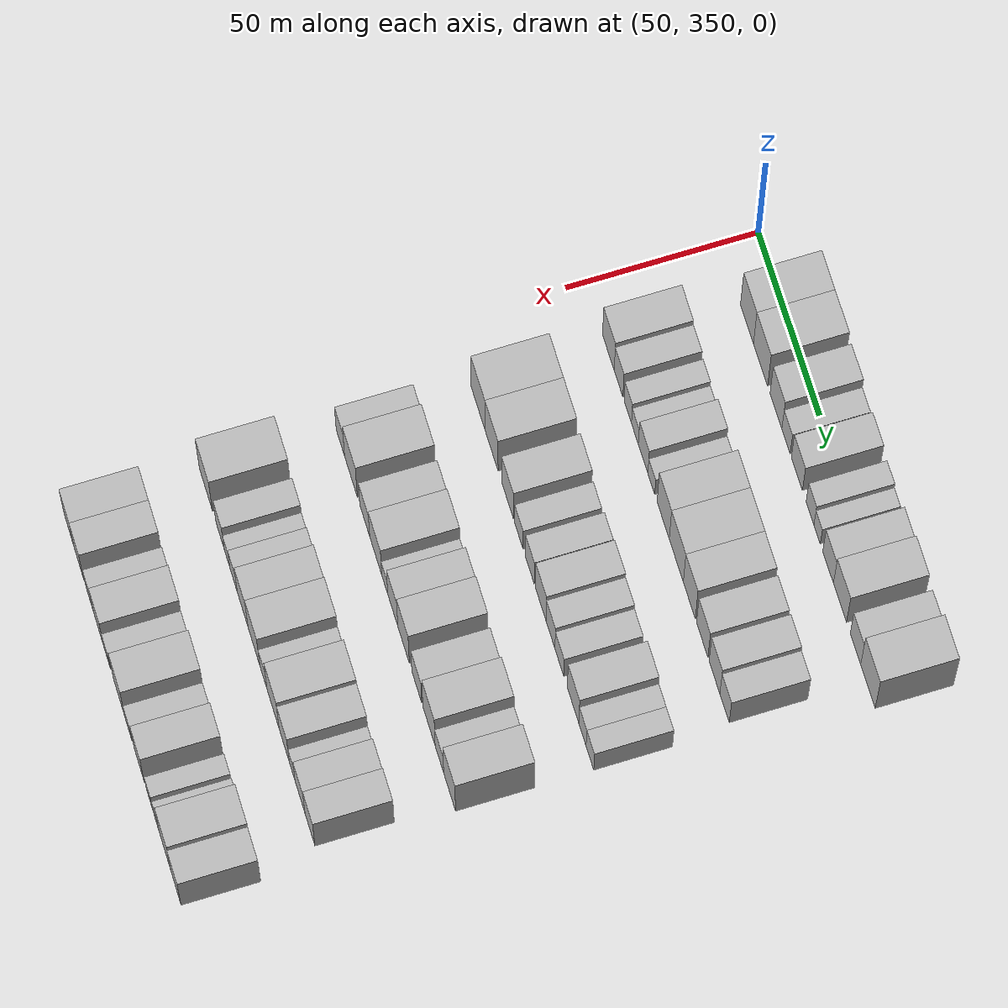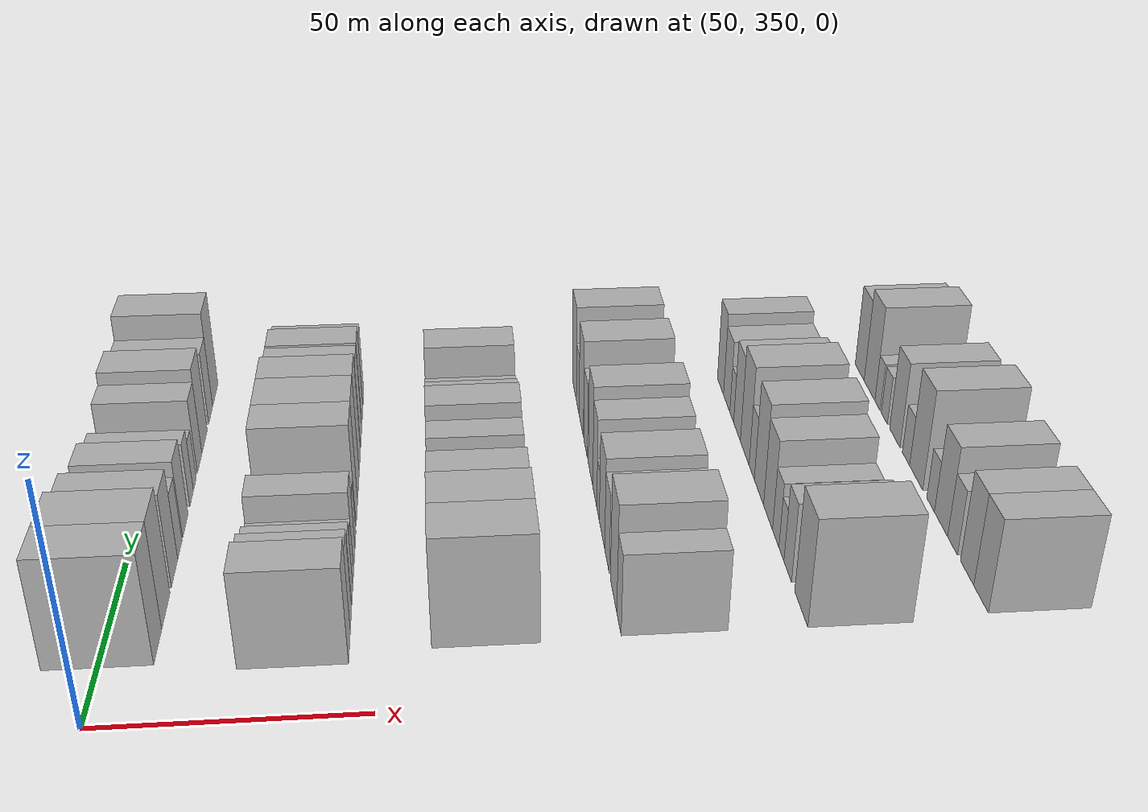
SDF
<sdf version="1.6">
 <world name="default">
  <model name="building_105">
   <static>1</static>
   <pose>50.0000 372.1015 0 0.000000 0.000000 0.000000</pose>
   <link name="link">
    <pose>0 0 12.00 0 0 0</pose>
    <collision name="collision"><geometry><box><size>20.0000 10.6088 24.0000</size></box></geometry></collision>
    <visual name="visual">
     <cast_shadows>0</cast_shadows>
     <geometry><box><size>20.0000 10.6088 24.0000</size></box></geometry>
     <material>
      <script>
       <uri>model://HANNAS_wall/materials/scripts</uri>
       <uri>model://HANNAS_wall/materials/textures</uri>
       <name>vrc/HANNAS_wall</name>
      </script>
     </material>
    </visual>
   </link>
  </model>
  <model name="building_106">
   <static>1</static>
   <pose>50.0000 383.1691 0 0.000000 0.000000 0.000000</pose>
   <link name="link">
    <pose>0 0 12.00 0 0 0</pose>
    <collision name="collision"><geometry><box><size>20.0000 11.5266 24.0000</size></box></geometry></collision>
    <visual name="visual">
     <cast_shadows>0</cast_shadows>
     <geometry><box><size>20.0000 11.5266 24.0000</size></box></geometry>
     <material>
      <script>
       <uri>model://HANNAS_wall/materials/scripts</uri>
       <uri>model://HANNAS_wall/materials/textures</uri>
       <name>vrc/HANNAS_wall</name>
      </script>
     </material>
    </visual>
   </link>
  </model>
  <model name="building_107">
   <static>1</static>
   <pose>50.0000 395.7316 0 0.000000 0.000000 0.000000</pose>
   <link name="link">
    <pose>0 0 10.50 0 0 0</pose>
    <collision name="collision"><geometry><box><size>20.0000 9.5983 21.0000</size></box></geometry></collision>
    <visual name="visual">
     <cast_shadows>0</cast_shadows>
     <geometry><box><size>20.0000 9.5983 21.0000</size></box></geometry>
     <material>
      <script>
       <uri>model://HANNAS_wall/materials/scripts</uri>
       <uri>model://HANNAS_wall/materials/textures</uri>
       <name>vrc/HANNAS_wall</name>
      </script>
     </material>
    </visual>
   </link>
  </model>
  <model name="building_108">
   <static>1</static>
   <pose>50.0000 403.8752 0 0.000000 0.000000 0.000000</pose>
   <link name="link">
    <pose>0 0 7.50 0 0 0</pose>
    <collision name="collision"><geometry><box><size>20.0000 6.6890 15.0000</size></box></geometry></collision>
    <visual name="visual">
     <cast_shadows>0</cast_shadows>
     <geometry><box><size>20.0000 6.6890 15.0000</size></box></geometry>
     <material>
      <script>
       <uri>model://HANNAS_wall/materials/scripts</uri>
       <uri>model://HANNAS_wall/materials/textures</uri>
       <name>vrc/HANNAS_wall</name>
      </script>
     </material>
    </visual>
   </link>
  </model>
  <model name="building_109">
   <static>1</static>
   <pose>50.0000 412.6821 0 0.000000 0.000000 0.000000</pose>
   <link name="link">
    <pose>0 0 9.00 0 0 0</pose>
    <collision name="collision"><geometry><box><size>20.0000 8.9248 18.0000</size></box></geometry></collision>
    <visual name="visual">
     <cast_shadows>0</cast_shadows>
     <geometry><box><size>20.0000 8.9248 18.0000</size></box></geometry>
     <material>
      <script>
       <uri>model://HANNAS_wall/materials/scripts</uri>
       <uri>model://HANNAS_wall/materials/textures</uri>
       <name>vrc/HANNAS_wall</name>
      </script>
     </material>
    </visual>
   </link>
  </model>
  <model name="building_110">
   <static>1</static>
   <pose>50.0000 423.2703 0 0.000000 0.000000 0.000000</pose>
   <link name="link">
    <pose>0 0 7.50 0 0 0</pose>
    <collision name="collision"><geometry><box><size>20.0000 6.2515 15.0000</size></box></geometry></collision>
    <visual name="visual">
     <cast_shadows>0</cast_shadows>
     <geometry><box><size>20.0000 6.2515 15.0000</size></box></geometry>
     <material>
      <script>
       <uri>model://HANNAS_wall/materials/scripts</uri>
       <uri>model://HANNAS_wall/materials/textures</uri>
       <name>vrc/HANNAS_wall</name>
      </script>
     </material>
    </visual>
   </link>
  </model>
  <model name="building_111">
   <static>1</static>
   <pose>50.0000 428.9384 0 0.000000 0.000000 0.000000</pose>
   <link name="link">
    <pose>0 0 6.00 0 0 0</pose>
    <collision name="collision"><geometry><box><size>20.0000 5.0847 12.0000</size></box></geometry></collision>
    <visual name="visual">
     <cast_shadows>0</cast_shadows>
     <geometry><box><size>20.0000 5.0847 12.0000</size></box></geometry>
     <material>
      <script>
       <uri>model://HANNAS_wall/materials/scripts</uri>
       <uri>model://HANNAS_wall/materials/textures</uri>
       <name>vrc/HANNAS_wall</name>
      </script>
     </material>
    </visual>
   </link>
  </model>
  <model name="building_112">
   <static>1</static>
   <pose>50.0000 437.7396 0 0.000000 0.000000 0.000000</pose>
   <link name="link">
    <pose>0 0 9.00 0 0 0</pose>
    <collision name="collision"><geometry><box><size>20.0000 8.5177 18.0000</size></box></geometry></collision>
    <visual name="visual">
     <cast_shadows>0</cast_shadows>
     <geometry><box><size>20.0000 8.5177 18.0000</size></box></geometry>
     <material>
      <script>
       <uri>model://HANNAS_wall/materials/scripts</uri>
       <uri>model://HANNAS_wall/materials/textures</uri>
       <name>vrc/HANNAS_wall</name>
      </script>
     </material>
    </visual>
   </link>
  </model>
  <model name="building_113">
   <static>1</static>
   <pose>50.0000 447.1914 0 0.000000 0.000000 0.000000</pose>
   <link name="link">
    <pose>0 0 10.50 0 0 0</pose>
    <collision name="collision"><geometry><box><size>20.0000 10.3860 21.0000</size></box></geometry></collision>
    <visual name="visual">
     <cast_shadows>0</cast_shadows>
     <geometry><box><size>20.0000 10.3860 21.0000</size></box></geometry>
     <material>
      <script>
       <uri>model://HANNAS_wall/materials/scripts</uri>
       <uri>model://HANNAS_wall/materials/textures</uri>
       <name>vrc/HANNAS_wall</name>
      </script>
     </material>
    </visual>
   </link>
  </model>
  <model name="building_114">
   <static>1</static>
   <pose>50.0000 459.5159 0 0.000000 0.000000 0.000000</pose>
   <link name="link">
    <pose>0 0 9.00 0 0 0</pose>
    <collision name="collision"><geometry><box><size>20.0000 8.2631 18.0000</size></box></geometry></collision>
    <visual name="visual">
     <cast_shadows>0</cast_shadows>
     <geometry><box><size>20.0000 8.2631 18.0000</size></box></geometry>
     <material>
      <script>
       <uri>model://HANNAS_wall/materials/scripts</uri>
       <uri>model://HANNAS_wall/materials/textures</uri>
       <name>vrc/HANNAS_wall</name>
      </script>
     </material>
    </visual>
   </link>
  </model>
  <model name="building_115">
   <static>1</static>
   <pose>50.0000 469.3848 0 0.000000 0.000000 0.000000</pose>
   <link name="link">
    <pose>0 0 12.00 0 0 0</pose>
    <collision name="collision"><geometry><box><size>20.0000 11.4747 24.0000</size></box></geometry></collision>
    <visual name="visual">
     <cast_shadows>0</cast_shadows>
     <geometry><box><size>20.0000 11.4747 24.0000</size></box></geometry>
     <material>
      <script>
       <uri>model://HANNAS_wall/materials/scripts</uri>
       <uri>model://HANNAS_wall/materials/textures</uri>
       <name>vrc/HANNAS_wall</name>
      </script>
     </material>
    </visual>
   </link>
  </model>
  <model name="building_232">
   <static>1</static>
   <pose>85.0000 369.1841 0 0.000000 0.000000 0.000000</pose>
   <link name="link">
    <pose>0 0 10.50 0 0 0</pose>
    <collision name="collision"><geometry><box><size>20.0000 9.6721 21.0000</size></box></geometry></collision>
    <visual name="visual">
     <cast_shadows>0</cast_shadows>
     <geometry><box><size>20.0000 9.6721 21.0000</size></box></geometry>
     <material>
      <script>
       <uri>model://HANNAS_wall/materials/scripts</uri>
       <uri>model://HANNAS_wall/materials/textures</uri>
       <name>vrc/HANNAS_wall</name>
      </script>
     </material>
    </visual>
   </link>
  </model>
  <model name="building_233">
   <static>1</static>
   <pose>85.0000 377.6361 0 0.000000 0.000000 0.000000</pose>
   <link name="link">
    <pose>0 0 9.00 0 0 0</pose>
    <collision name="collision"><geometry><box><size>20.0000 7.2318 18.0000</size></box></geometry></collision>
    <visual name="visual">
     <cast_shadows>0</cast_shadows>
     <geometry><box><size>20.0000 7.2318 18.0000</size></box></geometry>
     <material>
      <script>
       <uri>model://HANNAS_wall/materials/scripts</uri>
       <uri>model://HANNAS_wall/materials/textures</uri>
       <name>vrc/HANNAS_wall</name>
      </script>
     </material>
    </visual>
   </link>
  </model>
  <model name="building_234">
   <static>1</static>
   <pose>85.0000 385.3047 0 0.000000 0.000000 0.000000</pose>
   <link name="link">
    <pose>0 0 7.50 0 0 0</pose>
    <collision name="collision"><geometry><box><size>20.0000 6.1054 15.0000</size></box></geometry></collision>
    <visual name="visual">
     <cast_shadows>0</cast_shadows>
     <geometry><box><size>20.0000 6.1054 15.0000</size></box></geometry>
     <material>
      <script>
       <uri>model://HANNAS_wall/materials/scripts</uri>
       <uri>model://HANNAS_wall/materials/textures</uri>
       <name>vrc/HANNAS_wall</name>
      </script>
     </material>
    </visual>
   </link>
  </model>
  <model name="building_235">
   <static>1</static>
   <pose>85.0000 391.1885 0 0.000000 0.000000 0.000000</pose>
   <link name="link">
    <pose>0 0 6.00 0 0 0</pose>
    <collision name="collision"><geometry><box><size>20.0000 5.6624 12.0000</size></box></geometry></collision>
    <visual name="visual">
     <cast_shadows>0</cast_shadows>
     <geometry><box><size>20.0000 5.6624 12.0000</size></box></geometry>
     <material>
      <script>
       <uri>model://HANNAS_wall/materials/scripts</uri>
       <uri>model://HANNAS_wall/materials/textures</uri>
       <name>vrc/HANNAS_wall</name>
      </script>
     </material>
    </visual>
   </link>
  </model>
  <model name="building_236">
   <static>1</static>
   <pose>85.0000 397.9629 0 0.000000 0.000000 0.000000</pose>
   <link name="link">
    <pose>0 0 9.00 0 0 0</pose>
    <collision name="collision"><geometry><box><size>20.0000 7.8863 18.0000</size></box></geometry></collision>
    <visual name="visual">
     <cast_shadows>0</cast_shadows>
     <geometry><box><size>20.0000 7.8863 18.0000</size></box></geometry>
     <material>
      <script>
       <uri>model://HANNAS_wall/materials/scripts</uri>
       <uri>model://HANNAS_wall/materials/textures</uri>
       <name>vrc/HANNAS_wall</name>
      </script>
     </material>
    </visual>
   </link>
  </model>
  <model name="building_237">
   <static>1</static>
   <pose>85.0000 404.7337 0 0.000000 0.000000 0.000000</pose>
   <link name="link">
    <pose>0 0 6.00 0 0 0</pose>
    <collision name="collision"><geometry><box><size>20.0000 5.6554 12.0000</size></box></geometry></collision>
    <visual name="visual">
     <cast_shadows>0</cast_shadows>
     <geometry><box><size>20.0000 5.6554 12.0000</size></box></geometry>
     <material>
      <script>
       <uri>model://HANNAS_wall/materials/scripts</uri>
       <uri>model://HANNAS_wall/materials/textures</uri>
       <name>vrc/HANNAS_wall</name>
      </script>
     </material>
    </visual>
   </link>
  </model>
  <model name="building_238">
   <static>1</static>
   <pose>85.0000 414.5312 0 0.000000 0.000000 0.000000</pose>
   <link name="link">
    <pose>0 0 12.00 0 0 0</pose>
    <collision name="collision"><geometry><box><size>20.0000 9.9396 24.0000</size></box></geometry></collision>
    <visual name="visual">
     <cast_shadows>0</cast_shadows>
     <geometry><box><size>20.0000 9.9396 24.0000</size></box></geometry>
     <material>
      <script>
       <uri>model://HANNAS_wall/materials/scripts</uri>
       <uri>model://HANNAS_wall/materials/textures</uri>
       <name>vrc/HANNAS_wall</name>
      </script>
     </material>
    </visual>
   </link>
  </model>
  <model name="building_239">
   <static>1</static>
   <pose>85.0000 425.2509 0 0.000000 0.000000 0.000000</pose>
   <link name="link">
    <pose>0 0 12.00 0 0 0</pose>
    <collision name="collision"><geometry><box><size>20.0000 11.4998 24.0000</size></box></geometry></collision>
    <visual name="visual">
     <cast_shadows>0</cast_shadows>
     <geometry><box><size>20.0000 11.4998 24.0000</size></box></geometry>
     <material>
      <script>
       <uri>model://HANNAS_wall/materials/scripts</uri>
       <uri>model://HANNAS_wall/materials/textures</uri>
       <name>vrc/HANNAS_wall</name>
      </script>
     </material>
    </visual>
   </link>
  </model>
  <model name="building_240">
   <static>1</static>
   <pose>85.0000 435.8773 0 0.000000 0.000000 0.000000</pose>
   <link name="link">
    <pose>0 0 12.00 0 0 0</pose>
    <collision name="collision"><geometry><box><size>20.0000 9.7529 24.0000</size></box></geometry></collision>
    <visual name="visual">
     <cast_shadows>0</cast_shadows>
     <geometry><box><size>20.0000 9.7529 24.0000</size></box></geometry>
     <material>
      <script>
       <uri>model://HANNAS_wall/materials/scripts</uri>
       <uri>model://HANNAS_wall/materials/textures</uri>
       <name>vrc/HANNAS_wall</name>
      </script>
     </material>
    </visual>
   </link>
  </model>
  <model name="building_241">
   <static>1</static>
   <pose>85.0000 446.3670 0 0.000000 0.000000 0.000000</pose>
   <link name="link">
    <pose>0 0 10.50 0 0 0</pose>
    <collision name="collision"><geometry><box><size>20.0000 9.2265 21.0000</size></box></geometry></collision>
    <visual name="visual">
     <cast_shadows>0</cast_shadows>
     <geometry><box><size>20.0000 9.2265 21.0000</size></box></geometry>
     <material>
      <script>
       <uri>model://HANNAS_wall/materials/scripts</uri>
       <uri>model://HANNAS_wall/materials/textures</uri>
       <name>vrc/HANNAS_wall</name>
      </script>
     </material>
    </visual>
   </link>
  </model>
  <model name="building_242">
   <static>1</static>
   <pose>85.0000 456.2934 0 0.000000 0.000000 0.000000</pose>
   <link name="link">
    <pose>0 0 10.50 0 0 0</pose>
    <collision name="collision"><geometry><box><size>20.0000 8.6263 21.0000</size></box></geometry></collision>
    <visual name="visual">
     <cast_shadows>0</cast_shadows>
     <geometry><box><size>20.0000 8.6263 21.0000</size></box></geometry>
     <material>
      <script>
       <uri>model://HANNAS_wall/materials/scripts</uri>
       <uri>model://HANNAS_wall/materials/textures</uri>
       <name>vrc/HANNAS_wall</name>
      </script>
     </material>
    </visual>
   </link>
  </model>
  <model name="building_243">
   <static>1</static>
   <pose>85.0000 464.3890 0 0.000000 0.000000 0.000000</pose>
   <link name="link">
    <pose>0 0 9.00 0 0 0</pose>
    <collision name="collision"><geometry><box><size>20.0000 7.5648 18.0000</size></box></geometry></collision>
    <visual name="visual">
     <cast_shadows>0</cast_shadows>
     <geometry><box><size>20.0000 7.5648 18.0000</size></box></geometry>
     <material>
      <script>
       <uri>model://HANNAS_wall/materials/scripts</uri>
       <uri>model://HANNAS_wall/materials/textures</uri>
       <name>vrc/HANNAS_wall</name>
      </script>
     </material>
    </visual>
   </link>
  </model>
  <model name="building_360">
   <static>1</static>
   <pose>120.0000 373.6595 0 0.000000 0.000000 0.000000</pose>
   <link name="link">
    <pose>0 0 12.00 0 0 0</pose>
    <collision name="collision"><geometry><box><size>20.0000 11.7778 24.0000</size></box></geometry></collision>
    <visual name="visual">
     <cast_shadows>0</cast_shadows>
     <geometry><box><size>20.0000 11.7778 24.0000</size></box></geometry>
     <material>
      <script>
       <uri>model://HANNAS_wall/materials/scripts</uri>
       <uri>model://HANNAS_wall/materials/textures</uri>
       <name>vrc/HANNAS_wall</name>
      </script>
     </material>
    </visual>
   </link>
  </model>
  <model name="building_361">
   <static>1</static>
   <pose>120.0000 385.0418 0 0.000000 0.000000 0.000000</pose>
   <link name="link">
    <pose>0 0 12.00 0 0 0</pose>
    <collision name="collision"><geometry><box><size>20.0000 10.9868 24.0000</size></box></geometry></collision>
    <visual name="visual">
     <cast_shadows>0</cast_shadows>
     <geometry><box><size>20.0000 10.9868 24.0000</size></box></geometry>
     <material>
      <script>
       <uri>model://HANNAS_wall/materials/scripts</uri>
       <uri>model://HANNAS_wall/materials/textures</uri>
       <name>vrc/HANNAS_wall</name>
      </script>
     </material>
    </visual>
   </link>
  </model>
  <model name="building_362">
   <static>1</static>
   <pose>120.0000 398.4607 0 0.000000 0.000000 0.000000</pose>
   <link name="link">
    <pose>0 0 10.50 0 0 0</pose>
    <collision name="collision"><geometry><box><size>20.0000 9.8511 21.0000</size></box></geometry></collision>
    <visual name="visual">
     <cast_shadows>0</cast_shadows>
     <geometry><box><size>20.0000 9.8511 21.0000</size></box></geometry>
     <material>
      <script>
       <uri>model://HANNAS_wall/materials/scripts</uri>
       <uri>model://HANNAS_wall/materials/textures</uri>
       <name>vrc/HANNAS_wall</name>
      </script>
     </material>
    </visual>
   </link>
  </model>
  <model name="building_363">
   <static>1</static>
   <pose>120.0000 407.9261 0 0.000000 0.000000 0.000000</pose>
   <link name="link">
    <pose>0 0 7.50 0 0 0</pose>
    <collision name="collision"><geometry><box><size>20.0000 7.0798 15.0000</size></box></geometry></collision>
    <visual name="visual">
     <cast_shadows>0</cast_shadows>
     <geometry><box><size>20.0000 7.0798 15.0000</size></box></geometry>
     <material>
      <script>
       <uri>model://HANNAS_wall/materials/scripts</uri>
       <uri>model://HANNAS_wall/materials/textures</uri>
       <name>vrc/HANNAS_wall</name>
      </script>
     </material>
    </visual>
   </link>
  </model>
  <model name="building_364">
   <static>1</static>
   <pose>120.0000 417.1108 0 0.000000 0.000000 0.000000</pose>
   <link name="link">
    <pose>0 0 9.00 0 0 0</pose>
    <collision name="collision"><geometry><box><size>20.0000 7.2897 18.0000</size></box></geometry></collision>
    <visual name="visual">
     <cast_shadows>0</cast_shadows>
     <geometry><box><size>20.0000 7.2897 18.0000</size></box></geometry>
     <material>
      <script>
       <uri>model://HANNAS_wall/materials/scripts</uri>
       <uri>model://HANNAS_wall/materials/textures</uri>
       <name>vrc/HANNAS_wall</name>
      </script>
     </material>
    </visual>
   </link>
  </model>
  <model name="building_365">
   <static>1</static>
   <pose>120.0000 426.1958 0 0.000000 0.000000 0.000000</pose>
   <link name="link">
    <pose>0 0 10.50 0 0 0</pose>
    <collision name="collision"><geometry><box><size>20.0000 8.8804 21.0000</size></box></geometry></collision>
    <visual name="visual">
     <cast_shadows>0</cast_shadows>
     <geometry><box><size>20.0000 8.8804 21.0000</size></box></geometry>
     <material>
      <script>
       <uri>model://HANNAS_wall/materials/scripts</uri>
       <uri>model://HANNAS_wall/materials/textures</uri>
       <name>vrc/HANNAS_wall</name>
      </script>
     </material>
    </visual>
   </link>
  </model>
  <model name="building_366">
   <static>1</static>
   <pose>120.0000 434.3226 0 0.000000 0.000000 0.000000</pose>
   <link name="link">
    <pose>0 0 9.00 0 0 0</pose>
    <collision name="collision"><geometry><box><size>20.0000 7.3732 18.0000</size></box></geometry></collision>
    <visual name="visual">
     <cast_shadows>0</cast_shadows>
     <geometry><box><size>20.0000 7.3732 18.0000</size></box></geometry>
     <material>
      <script>
       <uri>model://HANNAS_wall/materials/scripts</uri>
       <uri>model://HANNAS_wall/materials/textures</uri>
       <name>vrc/HANNAS_wall</name>
      </script>
     </material>
    </visual>
   </link>
  </model>
  <model name="building_367">
   <static>1</static>
   <pose>120.0000 441.6383 0 0.000000 0.000000 0.000000</pose>
   <link name="link">
    <pose>0 0 7.50 0 0 0</pose>
    <collision name="collision"><geometry><box><size>20.0000 7.2581 15.0000</size></box></geometry></collision>
    <visual name="visual">
     <cast_shadows>0</cast_shadows>
     <geometry><box><size>20.0000 7.2581 15.0000</size></box></geometry>
     <material>
      <script>
       <uri>model://HANNAS_wall/materials/scripts</uri>
       <uri>model://HANNAS_wall/materials/textures</uri>
       <name>vrc/HANNAS_wall</name>
      </script>
     </material>
    </visual>
   </link>
  </model>
  <model name="building_368">
   <static>1</static>
   <pose>120.0000 452.9813 0 0.000000 0.000000 0.000000</pose>
   <link name="link">
    <pose>0 0 10.50 0 0 0</pose>
    <collision name="collision"><geometry><box><size>20.0000 9.4279 21.0000</size></box></geometry></collision>
    <visual name="visual">
     <cast_shadows>0</cast_shadows>
     <geometry><box><size>20.0000 9.4279 21.0000</size></box></geometry>
     <material>
      <script>
       <uri>model://HANNAS_wall/materials/scripts</uri>
       <uri>model://HANNAS_wall/materials/textures</uri>
       <name>vrc/HANNAS_wall</name>
      </script>
     </material>
    </visual>
   </link>
  </model>
  <model name="building_369">
   <static>1</static>
   <pose>120.0000 460.6994 0 0.000000 0.000000 0.000000</pose>
   <link name="link">
    <pose>0 0 7.50 0 0 0</pose>
    <collision name="collision"><geometry><box><size>20.0000 6.0082 15.0000</size></box></geometry></collision>
    <visual name="visual">
     <cast_shadows>0</cast_shadows>
     <geometry><box><size>20.0000 6.0082 15.0000</size></box></geometry>
     <material>
      <script>
       <uri>model://HANNAS_wall/materials/scripts</uri>
       <uri>model://HANNAS_wall/materials/textures</uri>
       <name>vrc/HANNAS_wall</name>
      </script>
     </material>
    </visual>
   </link>
  </model>
  <model name="building_370">
   <static>1</static>
   <pose>120.0000 466.8155 0 0.000000 0.000000 0.000000</pose>
   <link name="link">
    <pose>0 0 7.50 0 0 0</pose>
    <collision name="collision"><geometry><box><size>20.0000 6.2241 15.0000</size></box></geometry></collision>
    <visual name="visual">
     <cast_shadows>0</cast_shadows>
     <geometry><box><size>20.0000 6.2241 15.0000</size></box></geometry>
     <material>
      <script>
       <uri>model://HANNAS_wall/materials/scripts</uri>
       <uri>model://HANNAS_wall/materials/textures</uri>
       <name>vrc/HANNAS_wall</name>
      </script>
     </material>
    </visual>
   </link>
  </model>
  <model name="building_489">
   <static>1</static>
   <pose>155.0000 372.3143 0 0.000000 0.000000 0.000000</pose>
   <link name="link">
    <pose>0 0 9.00 0 0 0</pose>
    <collision name="collision"><geometry><box><size>20.0000 7.2623 18.0000</size></box></geometry></collision>
    <visual name="visual">
     <cast_shadows>0</cast_shadows>
     <geometry><box><size>20.0000 7.2623 18.0000</size></box></geometry>
     <material>
      <script>
       <uri>model://HANNAS_wall/materials/scripts</uri>
       <uri>model://HANNAS_wall/materials/textures</uri>
       <name>vrc/HANNAS_wall</name>
      </script>
     </material>
    </visual>
   </link>
  </model>
  <model name="building_490">
   <static>1</static>
   <pose>155.0000 381.4399 0 0.000000 0.000000 0.000000</pose>
   <link name="link">
    <pose>0 0 12.00 0 0 0</pose>
    <collision name="collision"><geometry><box><size>20.0000 10.9888 24.0000</size></box></geometry></collision>
    <visual name="visual">
     <cast_shadows>0</cast_shadows>
     <geometry><box><size>20.0000 10.9888 24.0000</size></box></geometry>
     <material>
      <script>
       <uri>model://HANNAS_wall/materials/scripts</uri>
       <uri>model://HANNAS_wall/materials/textures</uri>
       <name>vrc/HANNAS_wall</name>
      </script>
     </material>
    </visual>
   </link>
  </model>
  <model name="building_491">
   <static>1</static>
   <pose>155.0000 393.2115 0 0.000000 0.000000 0.000000</pose>
   <link name="link">
    <pose>0 0 9.00 0 0 0</pose>
    <collision name="collision"><geometry><box><size>20.0000 8.5545 18.0000</size></box></geometry></collision>
    <visual name="visual">
     <cast_shadows>0</cast_shadows>
     <geometry><box><size>20.0000 8.5545 18.0000</size></box></geometry>
     <material>
      <script>
       <uri>model://HANNAS_wall/materials/scripts</uri>
       <uri>model://HANNAS_wall/materials/textures</uri>
       <name>vrc/HANNAS_wall</name>
      </script>
     </material>
    </visual>
   </link>
  </model>
  <model name="building_492">
   <static>1</static>
   <pose>155.0000 402.6635 0 0.000000 0.000000 0.000000</pose>
   <link name="link">
    <pose>0 0 10.50 0 0 0</pose>
    <collision name="collision"><geometry><box><size>20.0000 10.3495 21.0000</size></box></geometry></collision>
    <visual name="visual">
     <cast_shadows>0</cast_shadows>
     <geometry><box><size>20.0000 10.3495 21.0000</size></box></geometry>
     <material>
      <script>
       <uri>model://HANNAS_wall/materials/scripts</uri>
       <uri>model://HANNAS_wall/materials/textures</uri>
       <name>vrc/HANNAS_wall</name>
      </script>
     </material>
    </visual>
   </link>
  </model>
  <model name="building_493">
   <static>1</static>
   <pose>155.0000 410.3931 0 0.000000 0.000000 0.000000</pose>
   <link name="link">
    <pose>0 0 6.00 0 0 0</pose>
    <collision name="collision"><geometry><box><size>20.0000 5.1098 12.0000</size></box></geometry></collision>
    <visual name="visual">
     <cast_shadows>0</cast_shadows>
     <geometry><box><size>20.0000 5.1098 12.0000</size></box></geometry>
     <material>
      <script>
       <uri>model://HANNAS_wall/materials/scripts</uri>
       <uri>model://HANNAS_wall/materials/textures</uri>
       <name>vrc/HANNAS_wall</name>
      </script>
     </material>
    </visual>
   </link>
  </model>
  <model name="building_494">
   <static>1</static>
   <pose>155.0000 417.2022 0 0.000000 0.000000 0.000000</pose>
   <link name="link">
    <pose>0 0 10.50 0 0 0</pose>
    <collision name="collision"><geometry><box><size>20.0000 8.5084 21.0000</size></box></geometry></collision>
    <visual name="visual">
     <cast_shadows>0</cast_shadows>
     <geometry><box><size>20.0000 8.5084 21.0000</size></box></geometry>
     <material>
      <script>
       <uri>model://HANNAS_wall/materials/scripts</uri>
       <uri>model://HANNAS_wall/materials/textures</uri>
       <name>vrc/HANNAS_wall</name>
      </script>
     </material>
    </visual>
   </link>
  </model>
  <model name="building_495">
   <static>1</static>
   <pose>155.0000 426.3307 0 0.000000 0.000000 0.000000</pose>
   <link name="link">
    <pose>0 0 12.00 0 0 0</pose>
    <collision name="collision"><geometry><box><size>20.0000 9.7484 24.0000</size></box></geometry></collision>
    <visual name="visual">
     <cast_shadows>0</cast_shadows>
     <geometry><box><size>20.0000 9.7484 24.0000</size></box></geometry>
     <material>
      <script>
       <uri>model://HANNAS_wall/materials/scripts</uri>
       <uri>model://HANNAS_wall/materials/textures</uri>
       <name>vrc/HANNAS_wall</name>
      </script>
     </material>
    </visual>
   </link>
  </model>
  <model name="building_496">
   <static>1</static>
   <pose>155.0000 437.4043 0 0.000000 0.000000 0.000000</pose>
   <link name="link">
    <pose>0 0 9.00 0 0 0</pose>
    <collision name="collision"><geometry><box><size>20.0000 8.3988 18.0000</size></box></geometry></collision>
    <visual name="visual">
     <cast_shadows>0</cast_shadows>
     <geometry><box><size>20.0000 8.3988 18.0000</size></box></geometry>
     <material>
      <script>
       <uri>model://HANNAS_wall/materials/scripts</uri>
       <uri>model://HANNAS_wall/materials/textures</uri>
       <name>vrc/HANNAS_wall</name>
      </script>
     </material>
    </visual>
   </link>
  </model>
  <model name="building_497">
   <static>1</static>
   <pose>155.0000 447.7480 0 0.000000 0.000000 0.000000</pose>
   <link name="link">
    <pose>0 0 12.00 0 0 0</pose>
    <collision name="collision"><geometry><box><size>20.0000 10.2888 24.0000</size></box></geometry></collision>
    <visual name="visual">
     <cast_shadows>0</cast_shadows>
     <geometry><box><size>20.0000 10.2888 24.0000</size></box></geometry>
     <material>
      <script>
       <uri>model://HANNAS_wall/materials/scripts</uri>
       <uri>model://HANNAS_wall/materials/textures</uri>
       <name>vrc/HANNAS_wall</name>
      </script>
     </material>
    </visual>
   </link>
  </model>
  <model name="building_498">
   <static>1</static>
   <pose>155.0000 456.4568 0 0.000000 0.000000 0.000000</pose>
   <link name="link">
    <pose>0 0 7.50 0 0 0</pose>
    <collision name="collision"><geometry><box><size>20.0000 7.1288 15.0000</size></box></geometry></collision>
    <visual name="visual">
     <cast_shadows>0</cast_shadows>
     <geometry><box><size>20.0000 7.1288 15.0000</size></box></geometry>
     <material>
      <script>
       <uri>model://HANNAS_wall/materials/scripts</uri>
       <uri>model://HANNAS_wall/materials/textures</uri>
       <name>vrc/HANNAS_wall</name>
      </script>
     </material>
    </visual>
   </link>
  </model>
  <model name="building_499">
   <static>1</static>
   <pose>155.0000 464.9933 0 0.000000 0.000000 0.000000</pose>
   <link name="link">
    <pose>0 0 12.00 0 0 0</pose>
    <collision name="collision"><geometry><box><size>20.0000 9.9442 24.0000</size></box></geometry></collision>
    <visual name="visual">
     <cast_shadows>0</cast_shadows>
     <geometry><box><size>20.0000 9.9442 24.0000</size></box></geometry>
     <material>
      <script>
       <uri>model://HANNAS_wall/materials/scripts</uri>
       <uri>model://HANNAS_wall/materials/textures</uri>
       <name>vrc/HANNAS_wall</name>
      </script>
     </material>
    </visual>
   </link>
  </model>
  <model name="building_611">
   <static>1</static>
   <pose>190.0000 374.2155 0 0.000000 0.000000 0.000000</pose>
   <link name="link">
    <pose>0 0 12.00 0 0 0</pose>
    <collision name="collision"><geometry><box><size>20.0000 11.5439 24.0000</size></box></geometry></collision>
    <visual name="visual">
     <cast_shadows>0</cast_shadows>
     <geometry><box><size>20.0000 11.5439 24.0000</size></box></geometry>
     <material>
      <script>
       <uri>model://HANNAS_wall/materials/scripts</uri>
       <uri>model://HANNAS_wall/materials/textures</uri>
       <name>vrc/HANNAS_wall</name>
      </script>
     </material>
    </visual>
   </link>
  </model>
  <model name="building_612">
   <static>1</static>
   <pose>190.0000 386.6106 0 0.000000 0.000000 0.000000</pose>
   <link name="link">
    <pose>0 0 9.00 0 0 0</pose>
    <collision name="collision"><geometry><box><size>20.0000 7.2462 18.0000</size></box></geometry></collision>
    <visual name="visual">
     <cast_shadows>0</cast_shadows>
     <geometry><box><size>20.0000 7.2462 18.0000</size></box></geometry>
     <material>
      <script>
       <uri>model://HANNAS_wall/materials/scripts</uri>
       <uri>model://HANNAS_wall/materials/textures</uri>
       <name>vrc/HANNAS_wall</name>
      </script>
     </material>
    </visual>
   </link>
  </model>
  <model name="building_613">
   <static>1</static>
   <pose>190.0000 392.6838 0 0.000000 0.000000 0.000000</pose>
   <link name="link">
    <pose>0 0 6.00 0 0 0</pose>
    <collision name="collision"><geometry><box><size>20.0000 4.9001 12.0000</size></box></geometry></collision>
    <visual name="visual">
     <cast_shadows>0</cast_shadows>
     <geometry><box><size>20.0000 4.9001 12.0000</size></box></geometry>
     <material>
      <script>
       <uri>model://HANNAS_wall/materials/scripts</uri>
       <uri>model://HANNAS_wall/materials/textures</uri>
       <name>vrc/HANNAS_wall</name>
      </script>
     </material>
    </visual>
   </link>
  </model>
  <model name="building_614">
   <static>1</static>
   <pose>190.0000 398.3623 0 0.000000 0.000000 0.000000</pose>
   <link name="link">
    <pose>0 0 7.50 0 0 0</pose>
    <collision name="collision"><geometry><box><size>20.0000 6.4569 15.0000</size></box></geometry></collision>
    <visual name="visual">
     <cast_shadows>0</cast_shadows>
     <geometry><box><size>20.0000 6.4569 15.0000</size></box></geometry>
     <material>
      <script>
       <uri>model://HANNAS_wall/materials/scripts</uri>
       <uri>model://HANNAS_wall/materials/textures</uri>
       <name>vrc/HANNAS_wall</name>
      </script>
     </material>
    </visual>
   </link>
  </model>
  <model name="building_615">
   <static>1</static>
   <pose>190.0000 406.3113 0 0.000000 0.000000 0.000000</pose>
   <link name="link">
    <pose>0 0 10.50 0 0 0</pose>
    <collision name="collision"><geometry><box><size>20.0000 9.4410 21.0000</size></box></geometry></collision>
    <visual name="visual">
     <cast_shadows>0</cast_shadows>
     <geometry><box><size>20.0000 9.4410 21.0000</size></box></geometry>
     <material>
      <script>
       <uri>model://HANNAS_wall/materials/scripts</uri>
       <uri>model://HANNAS_wall/materials/textures</uri>
       <name>vrc/HANNAS_wall</name>
      </script>
     </material>
    </visual>
   </link>
  </model>
  <model name="building_616">
   <static>1</static>
   <pose>190.0000 416.1698 0 0.000000 0.000000 0.000000</pose>
   <link name="link">
    <pose>0 0 12.00 0 0 0</pose>
    <collision name="collision"><geometry><box><size>20.0000 10.2759 24.0000</size></box></geometry></collision>
    <visual name="visual">
     <cast_shadows>0</cast_shadows>
     <geometry><box><size>20.0000 10.2759 24.0000</size></box></geometry>
     <material>
      <script>
       <uri>model://HANNAS_wall/materials/scripts</uri>
       <uri>model://HANNAS_wall/materials/textures</uri>
       <name>vrc/HANNAS_wall</name>
      </script>
     </material>
    </visual>
   </link>
  </model>
  <model name="building_617">
   <static>1</static>
   <pose>190.0000 424.3599 0 0.000000 0.000000 0.000000</pose>
   <link name="link">
    <pose>0 0 7.50 0 0 0</pose>
    <collision name="collision"><geometry><box><size>20.0000 6.1044 15.0000</size></box></geometry></collision>
    <visual name="visual">
     <cast_shadows>0</cast_shadows>
     <geometry><box><size>20.0000 6.1044 15.0000</size></box></geometry>
     <material>
      <script>
       <uri>model://HANNAS_wall/materials/scripts</uri>
       <uri>model://HANNAS_wall/materials/textures</uri>
       <name>vrc/HANNAS_wall</name>
      </script>
     </material>
    </visual>
   </link>
  </model>
  <model name="building_618">
   <static>1</static>
   <pose>190.0000 432.6463 0 0.000000 0.000000 0.000000</pose>
   <link name="link">
    <pose>0 0 12.00 0 0 0</pose>
    <collision name="collision"><geometry><box><size>20.0000 10.4684 24.0000</size></box></geometry></collision>
    <visual name="visual">
     <cast_shadows>0</cast_shadows>
     <geometry><box><size>20.0000 10.4684 24.0000</size></box></geometry>
     <material>
      <script>
       <uri>model://HANNAS_wall/materials/scripts</uri>
       <uri>model://HANNAS_wall/materials/textures</uri>
       <name>vrc/HANNAS_wall</name>
      </script>
     </material>
    </visual>
   </link>
  </model>
  <model name="building_619">
   <static>1</static>
   <pose>190.0000 442.1888 0 0.000000 0.000000 0.000000</pose>
   <link name="link">
    <pose>0 0 10.50 0 0 0</pose>
    <collision name="collision"><geometry><box><size>20.0000 8.6166 21.0000</size></box></geometry></collision>
    <visual name="visual">
     <cast_shadows>0</cast_shadows>
     <geometry><box><size>20.0000 8.6166 21.0000</size></box></geometry>
     <material>
      <script>
       <uri>model://HANNAS_wall/materials/scripts</uri>
       <uri>model://HANNAS_wall/materials/textures</uri>
       <name>vrc/HANNAS_wall</name>
      </script>
     </material>
    </visual>
   </link>
  </model>
  <model name="building_620">
   <static>1</static>
   <pose>190.0000 448.9477 0 0.000000 0.000000 0.000000</pose>
   <link name="link">
    <pose>0 0 6.00 0 0 0</pose>
    <collision name="collision"><geometry><box><size>20.0000 4.9013 12.0000</size></box></geometry></collision>
    <visual name="visual">
     <cast_shadows>0</cast_shadows>
     <geometry><box><size>20.0000 4.9013 12.0000</size></box></geometry>
     <material>
      <script>
       <uri>model://HANNAS_wall/materials/scripts</uri>
       <uri>model://HANNAS_wall/materials/textures</uri>
       <name>vrc/HANNAS_wall</name>
      </script>
     </material>
    </visual>
   </link>
  </model>
  <model name="building_621">
   <static>1</static>
   <pose>190.0000 455.6566 0 0.000000 0.000000 0.000000</pose>
   <link name="link">
    <pose>0 0 9.00 0 0 0</pose>
    <collision name="collision"><geometry><box><size>20.0000 8.5166 18.0000</size></box></geometry></collision>
    <visual name="visual">
     <cast_shadows>0</cast_shadows>
     <geometry><box><size>20.0000 8.5166 18.0000</size></box></geometry>
     <material>
      <script>
       <uri>model://HANNAS_wall/materials/scripts</uri>
       <uri>model://HANNAS_wall/materials/textures</uri>
       <name>vrc/HANNAS_wall</name>
      </script>
     </material>
    </visual>
   </link>
  </model>
  <model name="building_622">
   <static>1</static>
   <pose>190.0000 464.1226 0 0.000000 0.000000 0.000000</pose>
   <link name="link">
    <pose>0 0 10.50 0 0 0</pose>
    <collision name="collision"><geometry><box><size>20.0000 8.4154 21.0000</size></box></geometry></collision>
    <visual name="visual">
     <cast_shadows>0</cast_shadows>
     <geometry><box><size>20.0000 8.4154 21.0000</size></box></geometry>
     <material>
      <script>
       <uri>model://HANNAS_wall/materials/scripts</uri>
       <uri>model://HANNAS_wall/materials/textures</uri>
       <name>vrc/HANNAS_wall</name>
      </script>
     </material>
    </visual>
   </link>
  </model>
  <model name="building_743">
   <static>1</static>
   <pose>225.0000 374.5953 0 0.000000 0.000000 0.000000</pose>
   <link name="link">
    <pose>0 0 10.50 0 0 0</pose>
    <collision name="collision"><geometry><box><size>20.0000 8.9018 21.0000</size></box></geometry></collision>
    <visual name="visual">
     <cast_shadows>0</cast_shadows>
     <geometry><box><size>20.0000 8.9018 21.0000</size></box></geometry>
     <material>
      <script>
       <uri>model://HANNAS_wall/materials/scripts</uri>
       <uri>model://HANNAS_wall/materials/textures</uri>
       <name>vrc/HANNAS_wall</name>
      </script>
     </material>
    </visual>
   </link>
  </model>
  <model name="building_744">
   <static>1</static>
   <pose>225.0000 383.3232 0 0.000000 0.000000 0.000000</pose>
   <link name="link">
    <pose>0 0 10.50 0 0 0</pose>
    <collision name="collision"><geometry><box><size>20.0000 8.5540 21.0000</size></box></geometry></collision>
    <visual name="visual">
     <cast_shadows>0</cast_shadows>
     <geometry><box><size>20.0000 8.5540 21.0000</size></box></geometry>
     <material>
      <script>
       <uri>model://HANNAS_wall/materials/scripts</uri>
       <uri>model://HANNAS_wall/materials/textures</uri>
       <name>vrc/HANNAS_wall</name>
      </script>
     </material>
    </visual>
   </link>
  </model>
  <model name="building_745">
   <static>1</static>
   <pose>225.0000 392.9296 0 0.000000 0.000000 0.000000</pose>
   <link name="link">
    <pose>0 0 7.50 0 0 0</pose>
    <collision name="collision"><geometry><box><size>20.0000 6.6588 15.0000</size></box></geometry></collision>
    <visual name="visual">
     <cast_shadows>0</cast_shadows>
     <geometry><box><size>20.0000 6.6588 15.0000</size></box></geometry>
     <material>
      <script>
       <uri>model://HANNAS_wall/materials/scripts</uri>
       <uri>model://HANNAS_wall/materials/textures</uri>
       <name>vrc/HANNAS_wall</name>
      </script>
     </material>
    </visual>
   </link>
  </model>
  <model name="building_746">
   <static>1</static>
   <pose>225.0000 400.9210 0 0.000000 0.000000 0.000000</pose>
   <link name="link">
    <pose>0 0 10.50 0 0 0</pose>
    <collision name="collision"><geometry><box><size>20.0000 9.3241 21.0000</size></box></geometry></collision>
    <visual name="visual">
     <cast_shadows>0</cast_shadows>
     <geometry><box><size>20.0000 9.3241 21.0000</size></box></geometry>
     <material>
      <script>
       <uri>model://HANNAS_wall/materials/scripts</uri>
       <uri>model://HANNAS_wall/materials/textures</uri>
       <name>vrc/HANNAS_wall</name>
      </script>
     </material>
    </visual>
   </link>
  </model>
  <model name="building_747">
   <static>1</static>
   <pose>225.0000 408.3766 0 0.000000 0.000000 0.000000</pose>
   <link name="link">
    <pose>0 0 6.00 0 0 0</pose>
    <collision name="collision"><geometry><box><size>20.0000 5.5871 12.0000</size></box></geometry></collision>
    <visual name="visual">
     <cast_shadows>0</cast_shadows>
     <geometry><box><size>20.0000 5.5871 12.0000</size></box></geometry>
     <material>
      <script>
       <uri>model://HANNAS_wall/materials/scripts</uri>
       <uri>model://HANNAS_wall/materials/textures</uri>
       <name>vrc/HANNAS_wall</name>
      </script>
     </material>
    </visual>
   </link>
  </model>
  <model name="building_748">
   <static>1</static>
   <pose>225.0000 419.2886 0 0.000000 0.000000 0.000000</pose>
   <link name="link">
    <pose>0 0 12.00 0 0 0</pose>
    <collision name="collision"><geometry><box><size>20.0000 10.2369 24.0000</size></box></geometry></collision>
    <visual name="visual">
     <cast_shadows>0</cast_shadows>
     <geometry><box><size>20.0000 10.2369 24.0000</size></box></geometry>
     <material>
      <script>
       <uri>model://HANNAS_wall/materials/scripts</uri>
       <uri>model://HANNAS_wall/materials/textures</uri>
       <name>vrc/HANNAS_wall</name>
      </script>
     </material>
    </visual>
   </link>
  </model>
  <model name="building_749">
   <static>1</static>
   <pose>225.0000 427.3295 0 0.000000 0.000000 0.000000</pose>
   <link name="link">
    <pose>0 0 6.00 0 0 0</pose>
    <collision name="collision"><geometry><box><size>20.0000 5.8448 12.0000</size></box></geometry></collision>
    <visual name="visual">
     <cast_shadows>0</cast_shadows>
     <geometry><box><size>20.0000 5.8448 12.0000</size></box></geometry>
     <material>
      <script>
       <uri>model://HANNAS_wall/materials/scripts</uri>
       <uri>model://HANNAS_wall/materials/textures</uri>
       <name>vrc/HANNAS_wall</name>
      </script>
     </material>
    </visual>
   </link>
  </model>
  <model name="building_750">
   <static>1</static>
   <pose>225.0000 436.6101 0 0.000000 0.000000 0.000000</pose>
   <link name="link">
    <pose>0 0 10.50 0 0 0</pose>
    <collision name="collision"><geometry><box><size>20.0000 8.7164 21.0000</size></box></geometry></collision>
    <visual name="visual">
     <cast_shadows>0</cast_shadows>
     <geometry><box><size>20.0000 8.7164 21.0000</size></box></geometry>
     <material>
      <script>
       <uri>model://HANNAS_wall/materials/scripts</uri>
       <uri>model://HANNAS_wall/materials/textures</uri>
       <name>vrc/HANNAS_wall</name>
      </script>
     </material>
    </visual>
   </link>
  </model>
  <model name="building_751">
   <static>1</static>
   <pose>225.0000 445.6452 0 0.000000 0.000000 0.000000</pose>
   <link name="link">
    <pose>0 0 6.00 0 0 0</pose>
    <collision name="collision"><geometry><box><size>20.0000 5.3537 12.0000</size></box></geometry></collision>
    <visual name="visual">
     <cast_shadows>0</cast_shadows>
     <geometry><box><size>20.0000 5.3537 12.0000</size></box></geometry>
     <material>
      <script>
       <uri>model://HANNAS_wall/materials/scripts</uri>
       <uri>model://HANNAS_wall/materials/textures</uri>
       <name>vrc/HANNAS_wall</name>
      </script>
     </material>
    </visual>
   </link>
  </model>
  <model name="building_752">
   <static>1</static>
   <pose>225.0000 451.7304 0 0.000000 0.000000 0.000000</pose>
   <link name="link">
    <pose>0 0 6.00 0 0 0</pose>
    <collision name="collision"><geometry><box><size>20.0000 4.8168 12.0000</size></box></geometry></collision>
    <visual name="visual">
     <cast_shadows>0</cast_shadows>
     <geometry><box><size>20.0000 4.8168 12.0000</size></box></geometry>
     <material>
      <script>
       <uri>model://HANNAS_wall/materials/scripts</uri>
       <uri>model://HANNAS_wall/materials/textures</uri>
       <name>vrc/HANNAS_wall</name>
      </script>
     </material>
    </visual>
   </link>
  </model>
  <model name="building_753">
   <static>1</static>
   <pose>225.0000 459.2362 0 0.000000 0.000000 0.000000</pose>
   <link name="link">
    <pose>0 0 12.00 0 0 0</pose>
    <collision name="collision"><geometry><box><size>20.0000 10.1948 24.0000</size></box></geometry></collision>
    <visual name="visual">
     <cast_shadows>0</cast_shadows>
     <geometry><box><size>20.0000 10.1948 24.0000</size></box></geometry>
     <material>
      <script>
       <uri>model://HANNAS_wall/materials/scripts</uri>
       <uri>model://HANNAS_wall/materials/textures</uri>
       <name>vrc/HANNAS_wall</name>
      </script>
     </material>
    </visual>
   </link>
  </model>
  <model name="building_754">
   <static>1</static>
   <pose>225.0000 468.6667 0 0.000000 0.000000 0.000000</pose>
   <link name="link">
    <pose>0 0 10.50 0 0 0</pose>
    <collision name="collision"><geometry><box><size>20.0000 8.6662 21.0000</size></box></geometry></collision>
    <visual name="visual">
     <cast_shadows>0</cast_shadows>
     <geometry><box><size>20.0000 8.6662 21.0000</size></box></geometry>
     <material>
      <script>
       <uri>model://HANNAS_wall/materials/scripts</uri>
       <uri>model://HANNAS_wall/materials/textures</uri>
       <name>vrc/HANNAS_wall</name>
      </script>
     </material>
    </visual>
   </link>
  </model>
 </world>
</sdf>
